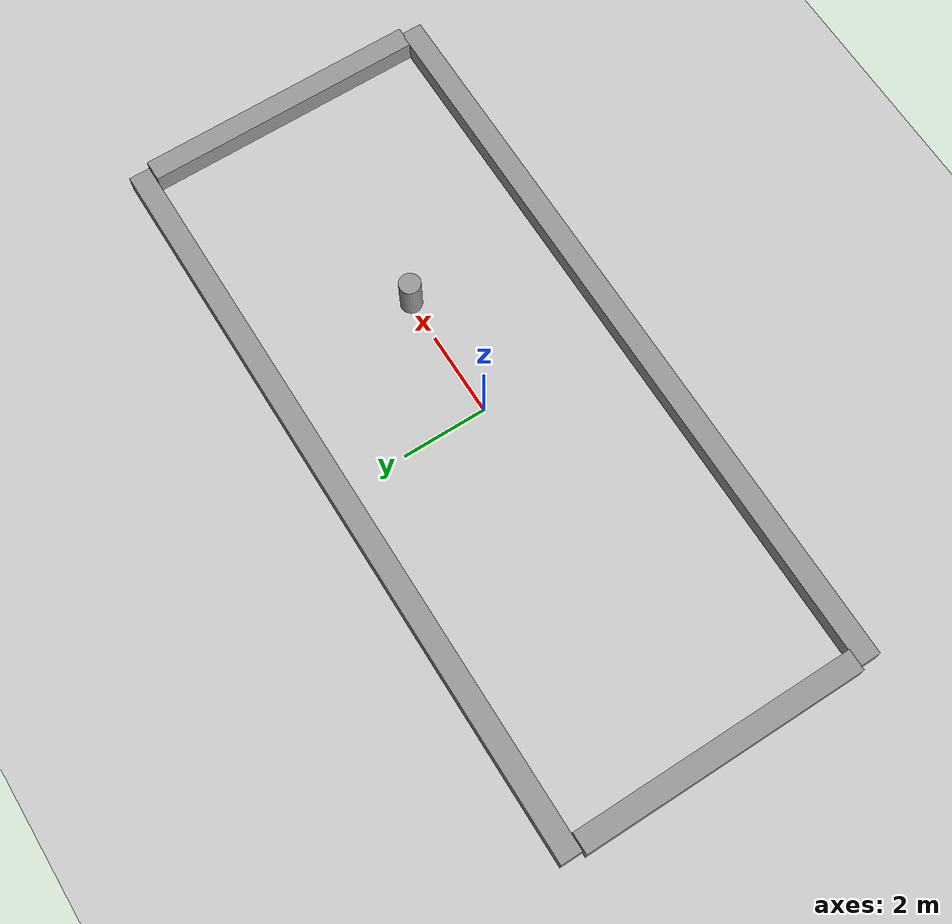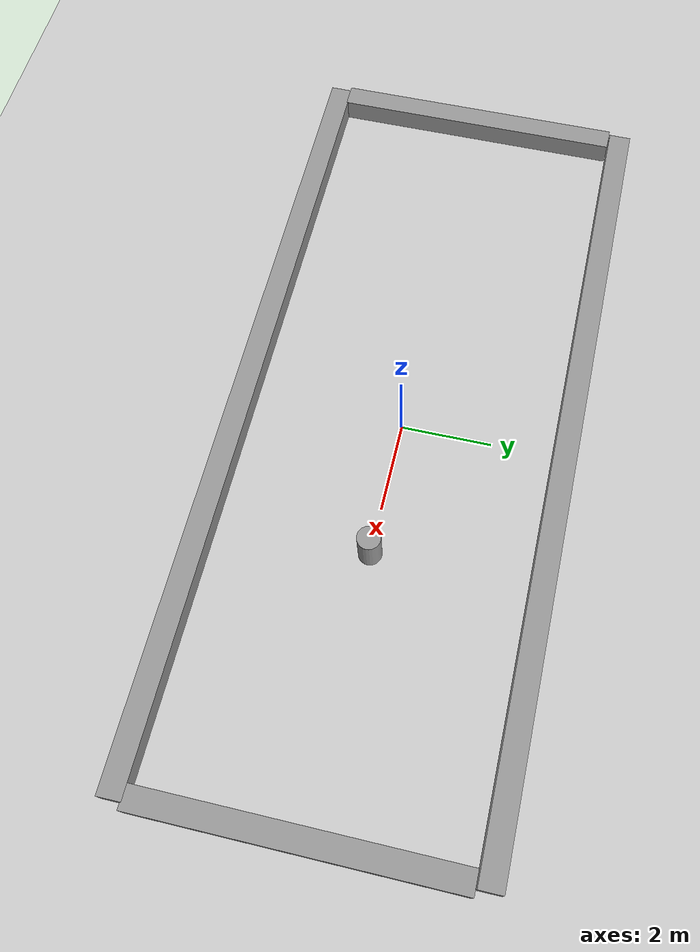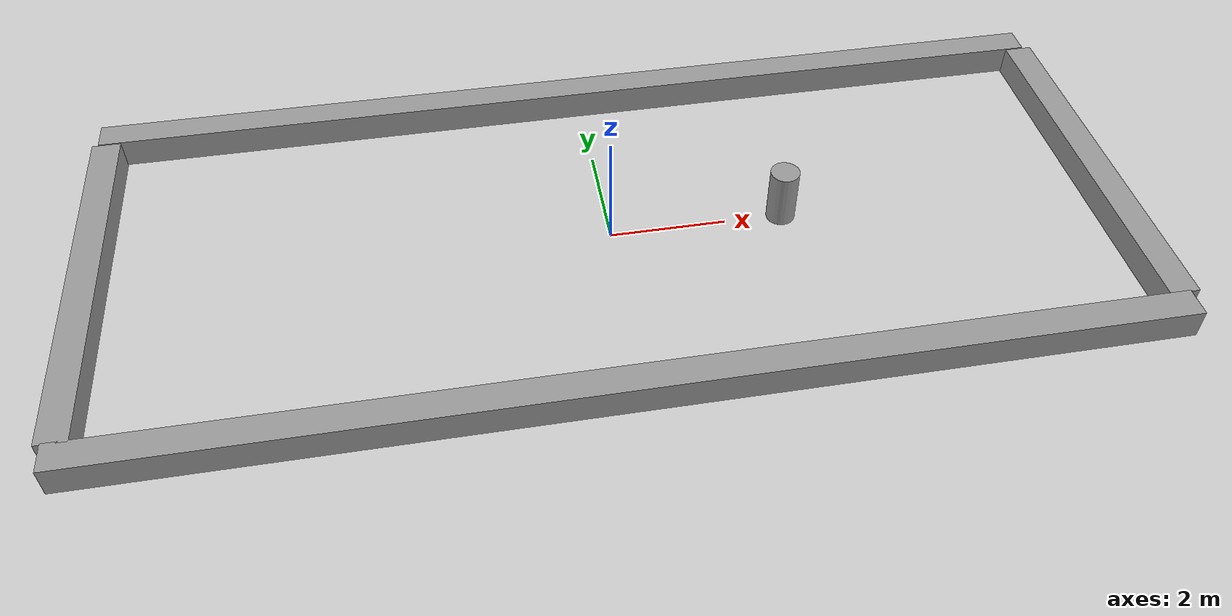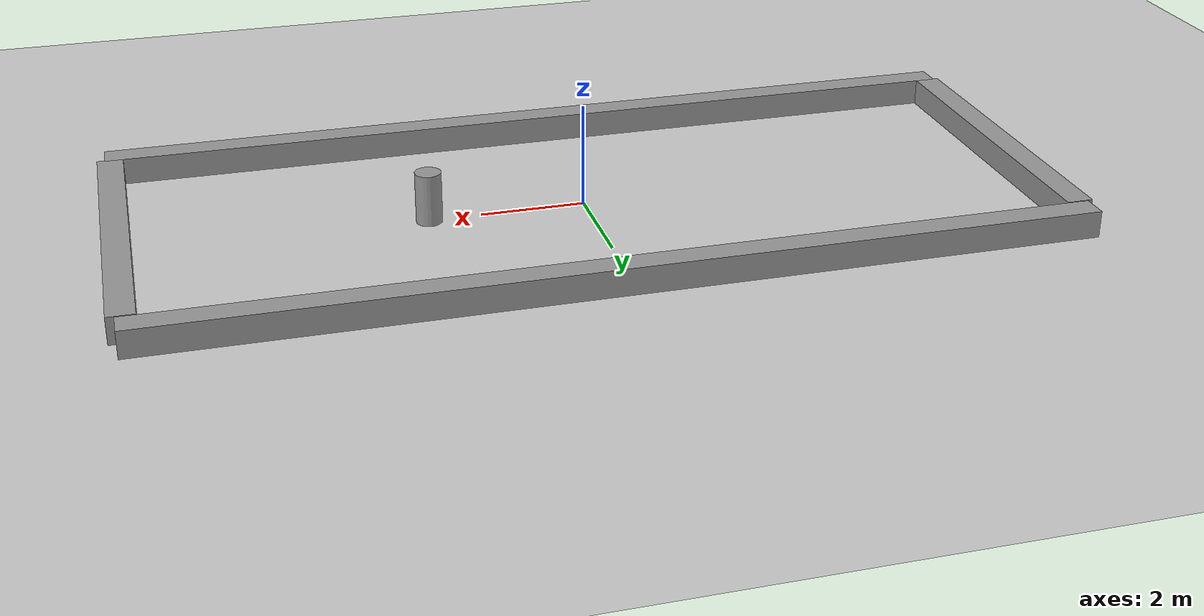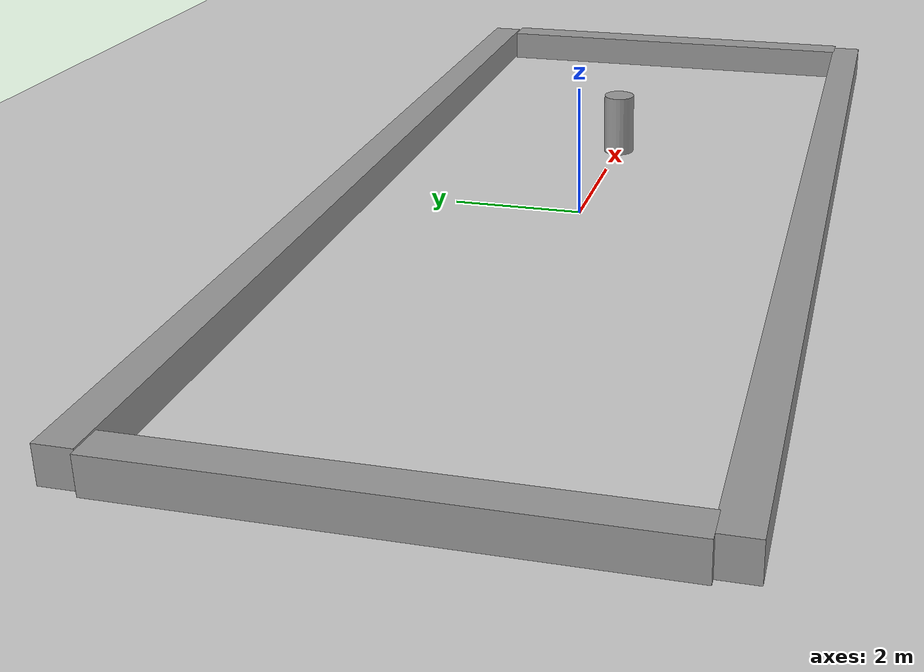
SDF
<sdf version="1.7">
 <world name="default">
  <light name="sun" type="directional">
   <pose>0 0 10 0 -0 0</pose>
   <diffuse>0.8 0.8 0.8 1</diffuse>
   <specular>0.2 0.2 0.2 1</specular>
   <attenuation>
    <range>1000</range>
    <constant>0.9</constant>
    <linear>0.01</linear>
    <quadratic>0.001</quadratic>
   </attenuation>
   <direction>-0.5 0.1 -0.9</direction>
   <spot><inner_angle>0</inner_angle><outer_angle>0</outer_angle><falloff>0</falloff></spot>
  </light>
  <model name="ground_plane">
   <static>1</static>
   <link name="link">
    <collision name="collision">
     <geometry><plane><normal>0 0 1</normal><size>100 100</size></plane></geometry>
     <surface>
      <contact><collide_bitmask>65535</collide_bitmask></contact>
      <friction><ode><mu>100</mu><mu2>50</mu2></ode></friction>
     </surface>
    </collision>
    <visual name="visual">
     <cast_shadows>0</cast_shadows>
     <geometry><plane><normal>0 0 1</normal><size>100 100</size></plane></geometry>
     <material>
      <script><uri>file://media/materials/scripts/gazebo.material</uri><name>Gazebo/Grey</name></script>
     </material>
    </visual>
   </link>
  </model>
  <physics type="ode">
   <real_time_update_rate>1000</real_time_update_rate>
   <max_step_size>0.001</max_step_size>
   <real_time_factor>1</real_time_factor>
   <ode>
    <solver>
     <type>quick</type>
     <iters>150</iters>
     <precon_iters>0</precon_iters>
     <sor>1.4</sor>
     <use_dynamic_moi_rescaling>1</use_dynamic_moi_rescaling>
    </solver>
    <constraints>
     <cfm>1e-05</cfm>
     <erp>0.2</erp>
     <contact_max_correcting_vel>2000</contact_max_correcting_vel>
     <contact_surface_layer>0.01</contact_surface_layer>
    </constraints>
   </ode>
  </physics>
  <model name="bottom_wall">
   <pose>0 -3.55 0 0 -0 0</pose>
   <static>1</static>
   <link name="link">
    <inertial>
     <mass>1</mass>
     <inertia>
      <ixx>0.166667</ixx>
      <ixy>0</ixy>
      <ixz>0</ixz>
      <iyy>0.166667</iyy>
      <iyz>0</iyz>
      <izz>0.166667</izz>
     </inertia>
    </inertial>
    <collision name="collision"><geometry><box><size>17.6 0.5 1</size></box></geometry></collision>
    <visual name="visual">
     <geometry><box><size>17.6 0.5 1</size></box></geometry>
     <material>
      <script><name>Gazebo/Grey</name><uri>file://media/materials/scripts/gazebo.material</uri></script>
     </material>
    </visual>
   </link>
  </model>
  <model name="top_wall">
   <pose>0 3.6 0 0 -0 0</pose>
   <static>1</static>
   <link name="link">
    <inertial>
     <mass>1</mass>
     <inertia>
      <ixx>0.166667</ixx>
      <ixy>0</ixy>
      <ixz>0</ixz>
      <iyy>0.166667</iyy>
      <iyz>0</iyz>
      <izz>0.166667</izz>
     </inertia>
    </inertial>
    <collision name="collision"><geometry><box><size>17.6 0.5 1</size></box></geometry></collision>
    <visual name="visual">
     <geometry><box><size>17.6 0.5 1</size></box></geometry>
     <material>
      <script><name>Gazebo/Grey</name><uri>file://media/materials/scripts/gazebo.material</uri></script>
     </material>
    </visual>
   </link>
  </model>
  <model name="left_wall">
   <pose>-8.65 0 0 0 -0 0</pose>
   <static>1</static>
   <link name="link">
    <inertial>
     <mass>1</mass>
     <inertia>
      <ixx>0.166667</ixx>
      <ixy>0</ixy>
      <ixz>0</ixz>
      <iyy>0.166667</iyy>
      <iyz>0</iyz>
      <izz>0.166667</izz>
     </inertia>
    </inertial>
    <collision name="collision"><geometry><box><size>0.5 6.65 1</size></box></geometry></collision>
    <visual name="visual">
     <geometry><box><size>0.5 6.65 1</size></box></geometry>
     <material>
      <script><name>Gazebo/Grey</name><uri>file://media/materials/scripts/gazebo.material</uri></script>
     </material>
    </visual>
   </link>
  </model>
  <model name="right_wall">
   <pose>8.7 0 0 0 -0 0</pose>
   <static>1</static>
   <link name="link">
    <inertial>
     <mass>1</mass>
     <inertia>
      <ixx>0.166667</ixx>
      <ixy>0</ixy>
      <ixz>0</ixz>
      <iyy>0.166667</iyy>
      <iyz>0</iyz>
      <izz>0.166667</izz>
     </inertia>
    </inertial>
    <collision name="collision"><geometry><box><size>0.5 6.65 1</size></box></geometry></collision>
    <visual name="visual">
     <geometry><box><size>0.5 6.65 1</size></box></geometry>
     <material>
      <script><name>Gazebo/Grey</name><uri>file://media/materials/scripts/gazebo.material</uri></script>
     </material>
    </visual>
   </link>
  </model>
  <scene><ambient>0.4 0.4 0.4 1</ambient><background>0.7 0.7 0.7 1</background><shadows>1</shadows></scene>
  <gravity>0 0 -9.8</gravity>
  <magnetic_field>6e-06 2.3e-05 -4.2e-05</magnetic_field>
  <atmosphere type="adiabatic"/>
  <spherical_coordinates>
   <surface_model>EARTH_WGS84</surface_model>
   <latitude_deg>0</latitude_deg>
   <longitude_deg>0</longitude_deg>
   <elevation>0</elevation>
   <heading_deg>0</heading_deg>
  </spherical_coordinates>
  <model name="unit_cylinder">
   <pose>3 2e-06 0.499997 -4e-06 -4e-06 -0</pose>
   <link name="link">
    <inertial>
     <mass>1</mass>
     <inertia><ixx>0.145833</ixx><ixy>0</ixy><ixz>0</ixz><iyy>0.145833</iyy><iyz>0</iyz><izz>0.125</izz></inertia>
    </inertial>
    <collision name="collision">
     <geometry><cylinder><radius>0.25</radius><length>1</length></cylinder></geometry>
    </collision>
    <visual name="visual">
     <geometry><cylinder><radius>0.25</radius><length>1</length></cylinder></geometry>
     <material>
      <script><name>Gazebo/Grey</name><uri>file://media/materials/scripts/gazebo.material</uri></script>
     </material>
    </visual>
   </link>
  </model>
 </world>
</sdf>
